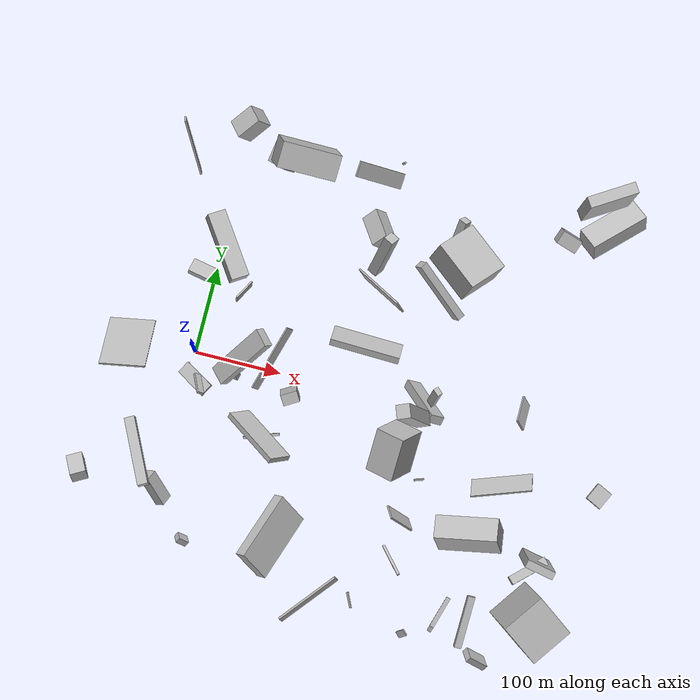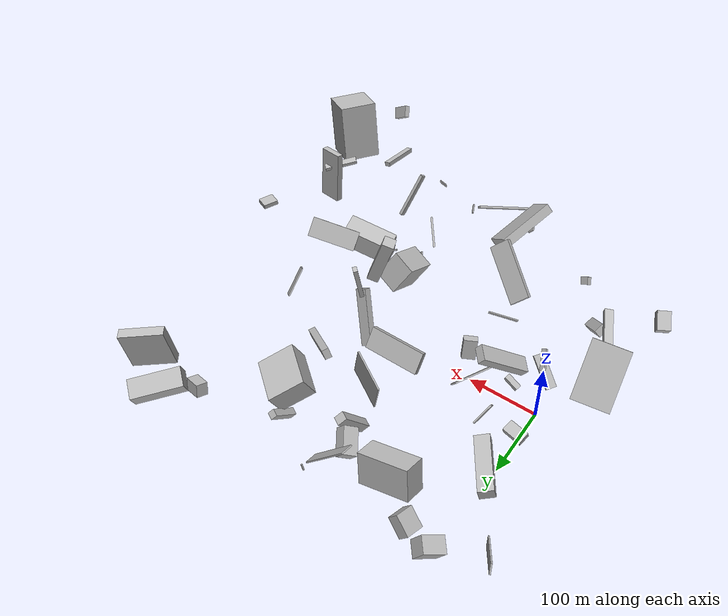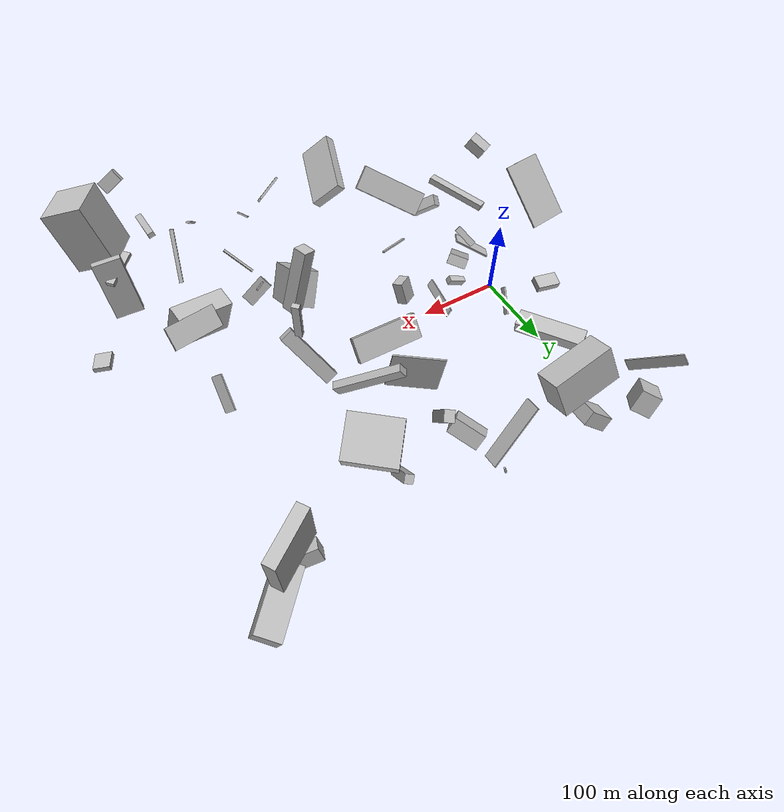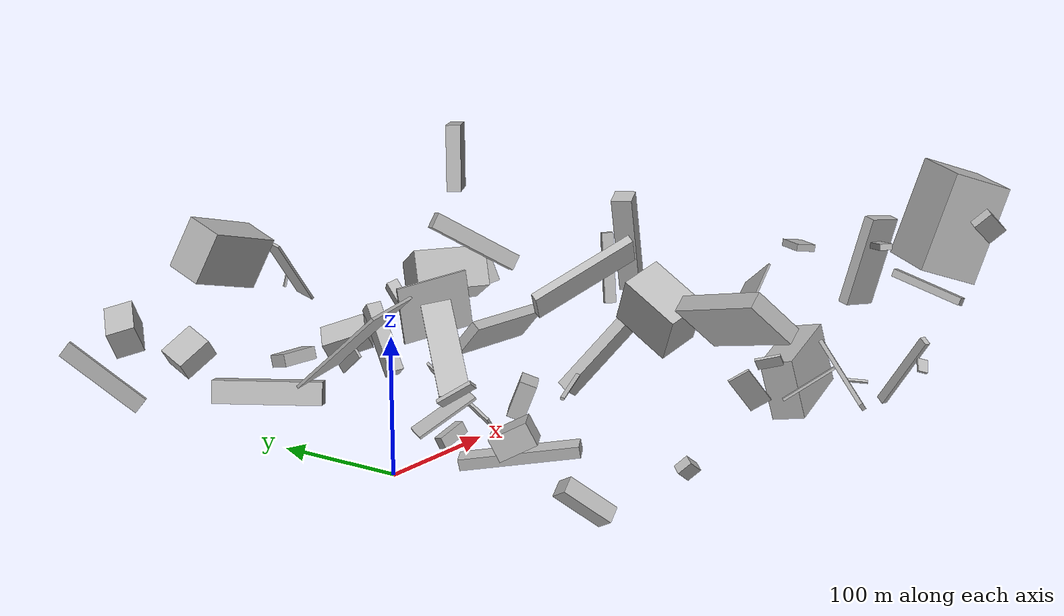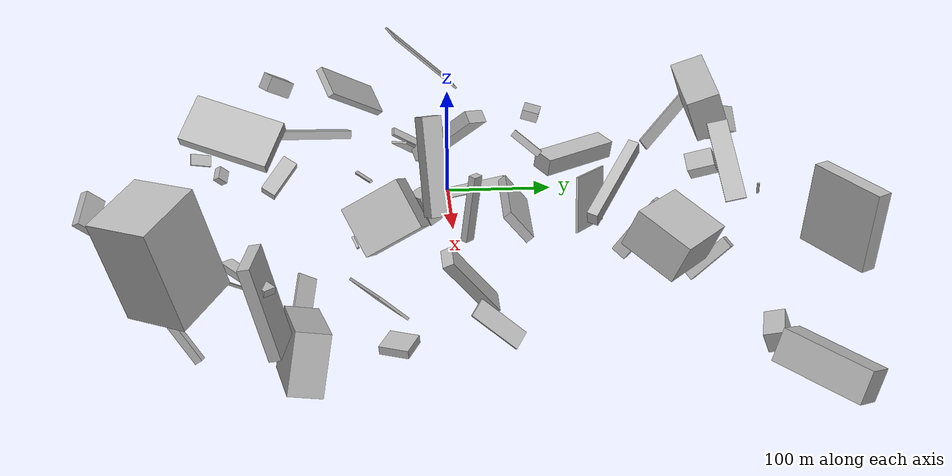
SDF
<sdf version="1.6">
 <world name="default">
  <scene>
   <sky><clouds><speed>12</speed></clouds></sky>
   <ambient>0.4 0.4 0.4 1</ambient>
   <background>0.7 0.7 0.7 1</background>
   <shadows>1</shadows>
  </scene>
  <gravity>0 0 -9.8066</gravity>
  <magnetic_field>6e-06 2.3e-05 -4.2e-05</magnetic_field>
  <physics default="0" name="default_physics" type="ode">
   <ode>
    <solver>
     <type>quick</type>
     <iters>10</iters>
     <sor>1.0</sor>
     <use_dynamic_moi_rescaling>0</use_dynamic_moi_rescaling>
    </solver>
    <constraints>
     <cfm>0</cfm>
     <erp>0.2</erp>
     <contact_max_correcting_vel>100</contact_max_correcting_vel>
     <contact_surface_layer>0.001</contact_surface_layer>
    </constraints>
   </ode>
   <max_step_size>0.004</max_step_size>
   <real_time_factor>1</real_time_factor>
   <real_time_update_rate>250</real_time_update_rate>
  </physics>
  <light name="sun" type="directional">
   <pose>0 0 10 0 0 0</pose>
   <diffuse>0.8 0.8 0.8 1</diffuse>
   <specular>0.2 0.2 0.2 1</specular>
   <attenuation>
    <range>1000</range>
    <constant>0.9</constant>
    <linear>0.01</linear>
    <quadratic>0.001</quadratic>
   </attenuation>
   <direction>-0.5 0.1 -0.9</direction>
  </light>
  <model name="building_1">
   <static>0</static>
   <pose>-25.648808580087987 -128.3590315207773 50.52656099022605 2.3150307828843513 1.3548592781466442 -0.34786988750093717</pose>
   <link name="link">
    <gravity>0</gravity>
    <pose>0 0 6.0 0 0 0</pose>
    <collision name="collision"><geometry><box><size>8 80 12</size></box></geometry></collision>
    <visual name="visual">
     <cast_shadows>0</cast_shadows>
     <geometry><box><size>8 80 12</size></box></geometry>
     <material>
      <script>
       <uri>model://HANNAS_wall/materials/scripts</uri>
       <uri>model://HANNAS_wall/materials/textures</uri>
       <name>vrc/HANNAS_wall</name>
      </script>
     </material>
    </visual>
   </link>
  </model>
  <model name="building_2">
   <static>0</static>
   <pose>140.9863397835036 -218.78834092388547 81.73564247008474 0.6244713602484495 -0.2516196511197131 -1.172433182925218</pose>
   <link name="link">
    <gravity>0</gravity>
    <pose>0 0 5.0 0 0 0</pose>
    <collision name="collision"><geometry><box><size>18 2 10</size></box></geometry></collision>
    <visual name="visual">
     <cast_shadows>0</cast_shadows>
     <geometry><box><size>18 2 10</size></box></geometry>
     <material>
      <script>
       <uri>model://HANNAS_wall/materials/scripts</uri>
       <uri>model://HANNAS_wall/materials/textures</uri>
       <name>vrc/HANNAS_wall</name>
      </script>
     </material>
    </visual>
   </link>
  </model>
  <model name="building_3">
   <static>0</static>
   <pose>194.02165271392116 111.1916273854132 38.60982103677689 0.15383672489767183 0.06830999055464027 -2.0718119767522025</pose>
   <link name="link">
    <gravity>0</gravity>
    <pose>0 0 23.5 0 0 0</pose>
    <collision name="collision"><geometry><box><size>2 59 47</size></box></geometry></collision>
    <visual name="visual">
     <cast_shadows>0</cast_shadows>
     <geometry><box><size>2 59 47</size></box></geometry>
     <material>
      <script>
       <uri>model://HANNAS_wall/materials/scripts</uri>
       <uri>model://HANNAS_wall/materials/textures</uri>
       <name>vrc/HANNAS_wall</name>
      </script>
     </material>
    </visual>
   </link>
  </model>
  <model name="building_4">
   <static>0</static>
   <pose>425.85148200685643 256.0952912750971 35.812108867833516 -2.8123348439069153 -0.15188387645946116 -2.346061519068905</pose>
   <link name="link">
    <gravity>0</gravity>
    <pose>0 0 13.0 0 0 0</pose>
    <collision name="collision"><geometry><box><size>72 28 26</size></box></geometry></collision>
    <visual name="visual">
     <cast_shadows>0</cast_shadows>
     <geometry><box><size>72 28 26</size></box></geometry>
     <material>
      <script>
       <uri>model://HANNAS_wall/materials/scripts</uri>
       <uri>model://HANNAS_wall/materials/textures</uri>
       <name>vrc/HANNAS_wall</name>
      </script>
     </material>
    </visual>
   </link>
  </model>
  <model name="building_5">
   <static>0</static>
   <pose>117.07049153150054 -20.38685762473442 16.953828510390025 0.08401991790631642 0.3621945752645848 -1.0140168460982333</pose>
   <link name="link">
    <gravity>0</gravity>
    <pose>0 0 14.5 0 0 0</pose>
    <collision name="collision"><geometry><box><size>13 19 29</size></box></geometry></collision>
    <visual name="visual">
     <cast_shadows>0</cast_shadows>
     <geometry><box><size>13 19 29</size></box></geometry>
     <material>
      <script>
       <uri>model://HANNAS_wall/materials/scripts</uri>
       <uri>model://HANNAS_wall/materials/textures</uri>
       <name>vrc/HANNAS_wall</name>
      </script>
     </material>
    </visual>
   </link>
  </model>
  <model name="building_6">
   <static>0</static>
   <pose>78.6131410281307 22.11722261666889 100.54930218588761 2.254362812926639 -0.17012061267663706 -0.8410812728498377</pose>
   <link name="link">
    <gravity>0</gravity>
    <pose>0 0 40.0 0 0 0</pose>
    <collision name="collision"><geometry><box><size>22 12 80</size></box></geometry></collision>
    <visual name="visual">
     <cast_shadows>0</cast_shadows>
     <geometry><box><size>22 12 80</size></box></geometry>
     <material>
      <script>
       <uri>model://HANNAS_wall/materials/scripts</uri>
       <uri>model://HANNAS_wall/materials/textures</uri>
       <name>vrc/HANNAS_wall</name>
      </script>
     </material>
    </visual>
   </link>
  </model>
  <model name="building_7">
   <static>0</static>
   <pose>156.57978307171402 235.41367955421785 80.8856118706894 -0.34111342186086896 -0.8291736460478841 -2.954838961459136</pose>
   <link name="link">
    <gravity>0</gravity>
    <pose>0 0 1.0 0 0 0</pose>
    <collision name="collision"><geometry><box><size>74 18 2</size></box></geometry></collision>
    <visual name="visual">
     <cast_shadows>0</cast_shadows>
     <geometry><box><size>74 18 2</size></box></geometry>
     <material>
      <script>
       <uri>model://HANNAS_wall/materials/scripts</uri>
       <uri>model://HANNAS_wall/materials/textures</uri>
       <name>vrc/HANNAS_wall</name>
      </script>
     </material>
    </visual>
   </link>
  </model>
  <model name="building_8">
   <static>0</static>
   <pose>250.9734280720977 121.49472894376518 95.55712576016035 0.20345797326532872 -0.540290804214693 2.5022857659736832</pose>
   <link name="link">
    <gravity>0</gravity>
    <pose>0 0 6.5 0 0 0</pose>
    <collision name="collision"><geometry><box><size>79 9 13</size></box></geometry></collision>
    <visual name="visual">
     <cast_shadows>0</cast_shadows>
     <geometry><box><size>79 9 13</size></box></geometry>
     <material>
      <script>
       <uri>model://HANNAS_wall/materials/scripts</uri>
       <uri>model://HANNAS_wall/materials/textures</uri>
       <name>vrc/HANNAS_wall</name>
      </script>
     </material>
    </visual>
   </link>
  </model>
  <model name="building_9">
   <static>0</static>
   <pose>23.40388477416892 -52.346399273270286 69.30803204535798 -2.283473424436914 0.6222507292315547 -0.01564473794276313</pose>
   <link name="link">
    <gravity>0</gravity>
    <pose>0 0 14.0 0 0 0</pose>
    <collision name="collision"><geometry><box><size>8 3 28</size></box></geometry></collision>
    <visual name="visual">
     <cast_shadows>0</cast_shadows>
     <geometry><box><size>8 3 28</size></box></geometry>
     <material>
      <script>
       <uri>model://HANNAS_wall/materials/scripts</uri>
       <uri>model://HANNAS_wall/materials/textures</uri>
       <name>vrc/HANNAS_wall</name>
      </script>
     </material>
    </visual>
   </link>
  </model>
  <model name="building_10">
   <static>0</static>
   <pose>428.47176554114594 -136.40841570413218 51.07193590630034 0.14551218877190406 -0.21284562025986134 1.3553590596011866</pose>
   <link name="link">
    <gravity>0</gravity>
    <pose>0 0 37.0 0 0 0</pose>
    <collision name="collision"><geometry><box><size>9 33 74</size></box></geometry></collision>
    <visual name="visual">
     <cast_shadows>0</cast_shadows>
     <geometry><box><size>9 33 74</size></box></geometry>
     <material>
      <script>
       <uri>model://HANNAS_wall/materials/scripts</uri>
       <uri>model://HANNAS_wall/materials/textures</uri>
       <name>vrc/HANNAS_wall</name>
      </script>
     </material>
    </visual>
   </link>
  </model>
  <model name="building_11">
   <static>0</static>
   <pose>275.5948764406394 3.2275520689382073 91.39718714816523 2.996642046969616 -1.429939659804069 0.9506548452680297</pose>
   <link name="link">
    <gravity>0</gravity>
    <pose>0 0 3.0 0 0 0</pose>
    <collision name="collision"><geometry><box><size>56 9 6</size></box></geometry></collision>
    <visual name="visual">
     <cast_shadows>0</cast_shadows>
     <geometry><box><size>56 9 6</size></box></geometry>
     <material>
      <script>
       <uri>model://HANNAS_wall/materials/scripts</uri>
       <uri>model://HANNAS_wall/materials/textures</uri>
       <name>vrc/HANNAS_wall</name>
      </script>
     </material>
    </visual>
   </link>
  </model>
  <model name="building_12">
   <static>0</static>
   <pose>148.68250929292486 49.61563717428279 55.67801986218029 -1.612716696681458 0.6999436435722759 -1.6228942964974806</pose>
   <link name="link">
    <gravity>0</gravity>
    <pose>0 0 40.0 0 0 0</pose>
    <collision name="collision"><geometry><box><size>8 30 80</size></box></geometry></collision>
    <visual name="visual">
     <cast_shadows>0</cast_shadows>
     <geometry><box><size>8 30 80</size></box></geometry>
     <material>
      <script>
       <uri>model://HANNAS_wall/materials/scripts</uri>
       <uri>model://HANNAS_wall/materials/textures</uri>
       <name>vrc/HANNAS_wall</name>
      </script>
     </material>
    </visual>
   </link>
  </model>
  <model name="building_13">
   <static>0</static>
   <pose>36.943183568051694 -212.57762425823003 39.51015541186138 2.292800132044213 -0.49357369944751994 1.0405588799168808</pose>
   <link name="link">
    <gravity>0</gravity>
    <pose>0 0 6.5 0 0 0</pose>
    <collision name="collision"><geometry><box><size>7 11 13</size></box></geometry></collision>
    <visual name="visual">
     <cast_shadows>0</cast_shadows>
     <geometry><box><size>7 11 13</size></box></geometry>
     <material>
      <script>
       <uri>model://HANNAS_wall/materials/scripts</uri>
       <uri>model://HANNAS_wall/materials/textures</uri>
       <name>vrc/HANNAS_wall</name>
      </script>
     </material>
    </visual>
   </link>
  </model>
  <model name="building_14">
   <static>0</static>
   <pose>255.37863790243932 201.98893717380085 33.44437241516993 -1.1827721848467612 -0.6998691464163306 -2.2930756385947078</pose>
   <link name="link">
    <gravity>0</gravity>
    <pose>0 0 5.0 0 0 0</pose>
    <collision name="collision"><geometry><box><size>10 43 10</size></box></geometry></collision>
    <visual name="visual">
     <cast_shadows>0</cast_shadows>
     <geometry><box><size>10 43 10</size></box></geometry>
     <material>
      <script>
       <uri>model://HANNAS_wall/materials/scripts</uri>
       <uri>model://HANNAS_wall/materials/textures</uri>
       <name>vrc/HANNAS_wall</name>
      </script>
     </material>
    </visual>
   </link>
  </model>
  <model name="building_15">
   <static>0</static>
   <pose>282.67136677369035 -85.18489066958018 66.0198353953335 -0.5045296299096627 -0.4609399597202614 -2.762877384642854</pose>
   <link name="link">
    <gravity>0</gravity>
    <pose>0 0 1.0 0 0 0</pose>
    <collision name="collision"><geometry><box><size>12 2 2</size></box></geometry></collision>
    <visual name="visual">
     <cast_shadows>0</cast_shadows>
     <geometry><box><size>12 2 2</size></box></geometry>
     <material>
      <script>
       <uri>model://HANNAS_wall/materials/scripts</uri>
       <uri>model://HANNAS_wall/materials/textures</uri>
       <name>vrc/HANNAS_wall</name>
      </script>
     </material>
    </visual>
   </link>
  </model>
  <model name="building_16">
   <static>0</static>
   <pose>413.6516253325218 253.21356897180044 130.7303856209363 1.5858544956179514 -0.12531509761645798 -2.557001323164337</pose>
   <link name="link">
    <gravity>0</gravity>
    <pose>0 0 6.5 0 0 0</pose>
    <collision name="collision"><geometry><box><size>57 59 13</size></box></geometry></collision>
    <visual name="visual">
     <cast_shadows>0</cast_shadows>
     <geometry><box><size>57 59 13</size></box></geometry>
     <material>
      <script>
       <uri>model://HANNAS_wall/materials/scripts</uri>
       <uri>model://HANNAS_wall/materials/textures</uri>
       <name>vrc/HANNAS_wall</name>
      </script>
     </material>
    </visual>
   </link>
  </model>
  <model name="building_17">
   <static>0</static>
   <pose>274.82435877159804 -176.6896365192876 28.400924548533297 -2.5814684250089583 -0.09579750676705587 -2.506897418094291</pose>
   <link name="link">
    <gravity>0</gravity>
    <pose>0 0 1.0 0 0 0</pose>
    <collision name="collision"><geometry><box><size>3 45 2</size></box></geometry></collision>
    <visual name="visual">
     <cast_shadows>0</cast_shadows>
     <geometry><box><size>3 45 2</size></box></geometry>
     <material>
      <script>
       <uri>model://HANNAS_wall/materials/scripts</uri>
       <uri>model://HANNAS_wall/materials/textures</uri>
       <name>vrc/HANNAS_wall</name>
      </script>
     </material>
    </visual>
   </link>
  </model>
  <model name="building_18">
   <static>0</static>
   <pose>-9.587677734565904 80.3017351782864 70.12049680021664 -0.0282279427026292 0.23737682446237457 1.368555581443668</pose>
   <link name="link">
    <gravity>0</gravity>
    <pose>0 0 4.5 0 0 0</pose>
    <collision name="collision"><geometry><box><size>16 27 9</size></box></geometry></collision>
    <visual name="visual">
     <cast_shadows>0</cast_shadows>
     <geometry><box><size>16 27 9</size></box></geometry>
     <material>
      <script>
       <uri>model://HANNAS_wall/materials/scripts</uri>
       <uri>model://HANNAS_wall/materials/textures</uri>
       <name>vrc/HANNAS_wall</name>
      </script>
     </material>
    </visual>
   </link>
  </model>
  <model name="building_19">
   <static>0</static>
   <pose>373.90778114065455 23.059812092499115 43.88951922436026 2.318770825413857 -0.486745404882797 0.44244900085664823</pose>
   <link name="link">
    <gravity>0</gravity>
    <pose>0 0 7.5 0 0 0</pose>
    <collision name="collision"><geometry><box><size>2 43 15</size></box></geometry></collision>
    <visual name="visual">
     <cast_shadows>0</cast_shadows>
     <geometry><box><size>2 43 15</size></box></geometry>
     <material>
      <script>
       <uri>model://HANNAS_wall/materials/scripts</uri>
       <uri>model://HANNAS_wall/materials/textures</uri>
       <name>vrc/HANNAS_wall</name>
      </script>
     </material>
    </visual>
   </link>
  </model>
  <model name="building_20">
   <static>0</static>
   <pose>480.41515677731854 -54.73595404606059 74.26855388182099 -0.01721109840120677 -0.15688763842837022 2.701583678251289</pose>
   <link name="link">
    <gravity>0</gravity>
    <pose>0 0 3.0 0 0 0</pose>
    <collision name="collision"><geometry><box><size>19 21 6</size></box></geometry></collision>
    <visual name="visual">
     <cast_shadows>0</cast_shadows>
     <geometry><box><size>19 21 6</size></box></geometry>
     <material>
      <script>
       <uri>model://HANNAS_wall/materials/scripts</uri>
       <uri>model://HANNAS_wall/materials/textures</uri>
       <name>vrc/HANNAS_wall</name>
      </script>
     </material>
    </visual>
   </link>
  </model>
  <model name="building_21">
   <static>0</static>
   <pose>285.42392278952053 -14.290324487806487 52.95400867718983 2.5831180829037748 -0.5143078072531709 -3.068721767827796</pose>
   <link name="link">
    <gravity>0</gravity>
    <pose>0 0 40.0 0 0 0</pose>
    <collision name="collision"><geometry><box><size>17 10 80</size></box></geometry></collision>
    <visual name="visual">
     <cast_shadows>0</cast_shadows>
     <geometry><box><size>17 10 80</size></box></geometry>
     <material>
      <script>
       <uri>model://HANNAS_wall/materials/scripts</uri>
       <uri>model://HANNAS_wall/materials/textures</uri>
       <name>vrc/HANNAS_wall</name>
      </script>
     </material>
    </visual>
   </link>
  </model>
  <model name="building_22">
   <static>0</static>
   <pose>40.87528999774493 70.28369051669425 57.71884198258939 0.626430103870121 0.21558750245817973 2.897047147658133</pose>
   <link name="link">
    <gravity>0</gravity>
    <pose>0 0 3.5 0 0 0</pose>
    <collision name="collision"><geometry><box><size>2 32 7</size></box></geometry></collision>
    <visual name="visual">
     <cast_shadows>0</cast_shadows>
     <geometry><box><size>2 32 7</size></box></geometry>
     <material>
      <script>
       <uri>model://HANNAS_wall/materials/scripts</uri>
       <uri>model://HANNAS_wall/materials/textures</uri>
       <name>vrc/HANNAS_wall</name>
      </script>
     </material>
    </visual>
   </link>
  </model>
  <model name="building_23">
   <static>0</static>
   <pose>186.13436643646713 154.89636668891177 30.457770068358755 1.7066493231709576 -0.5948134032440344 -2.143613136294983</pose>
   <link name="link">
    <gravity>0</gravity>
    <pose>0 0 6.0 0 0 0</pose>
    <collision name="collision"><geometry><box><size>14 59 12</size></box></geometry></collision>
    <visual name="visual">
     <cast_shadows>0</cast_shadows>
     <geometry><box><size>14 59 12</size></box></geometry>
     <material>
      <script>
       <uri>model://HANNAS_wall/materials/scripts</uri>
       <uri>model://HANNAS_wall/materials/textures</uri>
       <name>vrc/HANNAS_wall</name>
      </script>
     </material>
    </visual>
   </link>
  </model>
  <model name="building_24">
   <static>0</static>
   <pose>279.6496423180307 172.42219544590517 78.23793371802779 3.1258274230792877 0.43686640255580117 0.8885043605128832</pose>
   <link name="link">
    <gravity>0</gravity>
    <pose>0 0 17.0 0 0 0</pose>
    <collision name="collision"><geometry><box><size>51 60 34</size></box></geometry></collision>
    <visual name="visual">
     <cast_shadows>0</cast_shadows>
     <geometry><box><size>51 60 34</size></box></geometry>
     <material>
      <script>
       <uri>model://HANNAS_wall/materials/scripts</uri>
       <uri>model://HANNAS_wall/materials/textures</uri>
       <name>vrc/HANNAS_wall</name>
      </script>
     </material>
    </visual>
   </link>
  </model>
  <model name="building_25">
   <static>0</static>
   <pose>373.81589359977215 -227.02047210404555 88.87705179793713 -0.8097114538054229 1.225270855367172 2.3417030210572887</pose>
   <link name="link">
    <gravity>0</gravity>
    <pose>0 0 4.0 0 0 0</pose>
    <collision name="collision"><geometry><box><size>6 59 8</size></box></geometry></collision>
    <visual name="visual">
     <cast_shadows>0</cast_shadows>
     <geometry><box><size>6 59 8</size></box></geometry>
     <material>
      <script>
       <uri>model://HANNAS_wall/materials/scripts</uri>
       <uri>model://HANNAS_wall/materials/textures</uri>
       <name>vrc/HANNAS_wall</name>
      </script>
     </material>
    </visual>
   </link>
  </model>
  <model name="building_26">
   <static>0</static>
   <pose>6.206194398469673 252.13325167313053 66.47614334562098 2.1299933357147705 -1.0295884897406093 -2.9339318622526216</pose>
   <link name="link">
    <gravity>0</gravity>
    <pose>0 0 11.0 0 0 0</pose>
    <collision name="collision"><geometry><box><size>25 31 22</size></box></geometry></collision>
    <visual name="visual">
     <cast_shadows>0</cast_shadows>
     <geometry><box><size>25 31 22</size></box></geometry>
     <material>
      <script>
       <uri>model://HANNAS_wall/materials/scripts</uri>
       <uri>model://HANNAS_wall/materials/textures</uri>
       <name>vrc/HANNAS_wall</name>
      </script>
     </material>
    </visual>
   </link>
  </model>
  <model name="building_27">
   <static>0</static>
   <pose>196.49675625578993 -243.34768254180796 65.43363695734033 0.928678975553068 -0.3123686900972122 0.8678702388035875</pose>
   <link name="link">
    <gravity>0</gravity>
    <pose>0 0 1.5 0 0 0</pose>
    <collision name="collision"><geometry><box><size>80 6 3</size></box></geometry></collision>
    <visual name="visual">
     <cast_shadows>0</cast_shadows>
     <geometry><box><size>80 6 3</size></box></geometry>
     <material>
      <script>
       <uri>model://HANNAS_wall/materials/scripts</uri>
       <uri>model://HANNAS_wall/materials/textures</uri>
       <name>vrc/HANNAS_wall</name>
      </script>
     </material>
    </visual>
   </link>
  </model>
  <model name="building_28">
   <static>0</static>
   <pose>420.4135106813281 -153.00224461788537 102.38317993738261 1.4800634891007938 -1.4022393265673154 0.8583971545017733</pose>
   <link name="link">
    <gravity>0</gravity>
    <pose>0 0 5.0 0 0 0</pose>
    <collision name="collision"><geometry><box><size>5 46 10</size></box></geometry></collision>
    <visual name="visual">
     <cast_shadows>0</cast_shadows>
     <geometry><box><size>5 46 10</size></box></geometry>
     <material>
      <script>
       <uri>model://HANNAS_wall/materials/scripts</uri>
       <uri>model://HANNAS_wall/materials/textures</uri>
       <name>vrc/HANNAS_wall</name>
      </script>
     </material>
    </visual>
   </link>
  </model>
  <model name="building_29">
   <static>0</static>
   <pose>347.91769944966376 -121.70642734504531 32.829360349939535 2.969097881384842 0.18866916156321464 1.7097952542230848</pose>
   <link name="link">
    <gravity>0</gravity>
    <pose>0 0 24.5 0 0 0</pose>
    <collision name="collision"><geometry><box><size>27 72 49</size></box></geometry></collision>
    <visual name="visual">
     <cast_shadows>0</cast_shadows>
     <geometry><box><size>27 72 49</size></box></geometry>
     <material>
      <script>
       <uri>model://HANNAS_wall/materials/scripts</uri>
       <uri>model://HANNAS_wall/materials/textures</uri>
       <name>vrc/HANNAS_wall</name>
      </script>
     </material>
    </visual>
   </link>
  </model>
  <model name="building_30">
   <static>0</static>
   <pose>-84.60093316564485 -170.33572799037853 76.34693727835452 -0.4708048100065299 -0.012695495440034607 0.5107915163314585</pose>
   <link name="link">
    <gravity>0</gravity>
    <pose>0 0 8.0 0 0 0</pose>
    <collision name="collision"><geometry><box><size>18 26 16</size></box></geometry></collision>
    <visual name="visual">
     <cast_shadows>0</cast_shadows>
     <geometry><box><size>18 26 16</size></box></geometry>
     <material>
      <script>
       <uri>model://HANNAS_wall/materials/scripts</uri>
       <uri>model://HANNAS_wall/materials/textures</uri>
       <name>vrc/HANNAS_wall</name>
      </script>
     </material>
    </visual>
   </link>
  </model>
  <model name="building_31">
   <static>0</static>
   <pose>248.99733851097147 -26.909275565750463 157.73363582293032 3.112984377744407 -0.2932658414631561 0.3569931859350571</pose>
   <link name="link">
    <gravity>0</gravity>
    <pose>0 0 39.5 0 0 0</pose>
    <collision name="collision"><geometry><box><size>16 16 79</size></box></geometry></collision>
    <visual name="visual">
     <cast_shadows>0</cast_shadows>
     <geometry><box><size>16 16 79</size></box></geometry>
     <material>
      <script>
       <uri>model://HANNAS_wall/materials/scripts</uri>
       <uri>model://HANNAS_wall/materials/textures</uri>
       <name>vrc/HANNAS_wall</name>
      </script>
     </material>
    </visual>
   </link>
  </model>
  <model name="building_32">
   <static>0</static>
   <pose>372.83703735462217 -58.06448228807549 51.566012498274304 0.28589969319527914 0.791496915505491 -1.0401591467953335</pose>
   <link name="link">
    <gravity>0</gravity>
    <pose>0 0 14.0 0 0 0</pose>
    <collision name="collision"><geometry><box><size>2 69 28</size></box></geometry></collision>
    <visual name="visual">
     <cast_shadows>0</cast_shadows>
     <geometry><box><size>2 69 28</size></box></geometry>
     <material>
      <script>
       <uri>model://HANNAS_wall/materials/scripts</uri>
       <uri>model://HANNAS_wall/materials/textures</uri>
       <name>vrc/HANNAS_wall</name>
      </script>
     </material>
    </visual>
   </link>
  </model>
  <model name="building_33">
   <static>0</static>
   <pose>378.94836601299045 228.91756925209958 20.27135921192016 0.3239422551402743 -0.2888822408339668 1.2234937485489294</pose>
   <link name="link">
    <gravity>0</gravity>
    <pose>0 0 9.0 0 0 0</pose>
    <collision name="collision"><geometry><box><size>16 25 18</size></box></geometry></collision>
    <visual name="visual">
     <cast_shadows>0</cast_shadows>
     <geometry><box><size>16 25 18</size></box></geometry>
     <material>
      <script>
       <uri>model://HANNAS_wall/materials/scripts</uri>
       <uri>model://HANNAS_wall/materials/textures</uri>
       <name>vrc/HANNAS_wall</name>
      </script>
     </material>
    </visual>
   </link>
  </model>
  <model name="building_34">
   <static>0</static>
   <pose>89.57575124855973 9.494155713619733 34.387806593859345 2.650273995476173 -0.873238496451817 -3.0585728685452733</pose>
   <link name="link">
    <gravity>0</gravity>
    <pose>0 0 1.0 0 0 0</pose>
    <collision name="collision"><geometry><box><size>10 80 2</size></box></geometry></collision>
    <visual name="visual">
     <cast_shadows>0</cast_shadows>
     <geometry><box><size>10 80 2</size></box></geometry>
     <material>
      <script>
       <uri>model://HANNAS_wall/materials/scripts</uri>
       <uri>model://HANNAS_wall/materials/textures</uri>
       <name>vrc/HANNAS_wall</name>
      </script>
     </material>
    </visual>
   </link>
  </model>
  <model name="building_35">
   <static>0</static>
   <pose>100.26923094777315 -80.45154187386704 53.8608195963274 -3.001199871296251 0.350144078671074 -1.1963990167081973</pose>
   <link name="link">
    <gravity>0</gravity>
    <pose>0 0 1.0 0 0 0</pose>
    <collision name="collision"><geometry><box><size>3 41 2</size></box></geometry></collision>
    <visual name="visual">
     <cast_shadows>0</cast_shadows>
     <geometry><box><size>3 41 2</size></box></geometry>
     <material>
      <script>
       <uri>model://HANNAS_wall/materials/scripts</uri>
       <uri>model://HANNAS_wall/materials/textures</uri>
       <name>vrc/HANNAS_wall</name>
      </script>
     </material>
    </visual>
   </link>
  </model>
  <model name="building_36">
   <static>0</static>
   <pose>154.61870071954843 -198.57574120050037 95.64477283549517 -0.7939158760772277 0.23965009587268496 1.261899175803757</pose>
   <link name="link">
    <gravity>0</gravity>
    <pose>0 0 21.5 0 0 0</pose>
    <collision name="collision"><geometry><box><size>80 13 43</size></box></geometry></collision>
    <visual name="visual">
     <cast_shadows>0</cast_shadows>
     <geometry><box><size>80 13 43</size></box></geometry>
     <material>
      <script>
       <uri>model://HANNAS_wall/materials/scripts</uri>
       <uri>model://HANNAS_wall/materials/textures</uri>
       <name>vrc/HANNAS_wall</name>
      </script>
     </material>
    </visual>
   </link>
  </model>
  <model name="building_37">
   <static>0</static>
   <pose>259.9944771847451 -125.18082959906252 28.86208067394891 -2.62515853860896 -0.5520854220695104 -1.047076429219619</pose>
   <link name="link">
    <gravity>0</gravity>
    <pose>0 0 19.5 0 0 0</pose>
    <collision name="collision"><geometry><box><size>18 2 39</size></box></geometry></collision>
    <visual name="visual">
     <cast_shadows>0</cast_shadows>
     <geometry><box><size>18 2 39</size></box></geometry>
     <material>
      <script>
       <uri>model://HANNAS_wall/materials/scripts</uri>
       <uri>model://HANNAS_wall/materials/textures</uri>
       <name>vrc/HANNAS_wall</name>
      </script>
     </material>
    </visual>
   </link>
  </model>
  <model name="building_38">
   <static>0</static>
   <pose>-58.27968014476198 223.20008094066367 47.165648619099194 1.670500631111104 0.6633611454811194 -1.030012698958972</pose>
   <link name="link">
    <gravity>0</gravity>
    <pose>0 0 1.0 0 0 0</pose>
    <collision name="collision"><geometry><box><size>69 14 2</size></box></geometry></collision>
    <visual name="visual">
     <cast_shadows>0</cast_shadows>
     <geometry><box><size>69 14 2</size></box></geometry>
     <material>
      <script>
       <uri>model://HANNAS_wall/materials/scripts</uri>
       <uri>model://HANNAS_wall/materials/textures</uri>
       <name>vrc/HANNAS_wall</name>
      </script>
     </material>
    </visual>
   </link>
  </model>
  <model name="building_39">
   <static>0</static>
   <pose>422.79359825012796 -232.89091020175437 125.49360190404875 1.5068045912508778 -0.32294216460908703 2.5438094222571963</pose>
   <link name="link">
    <gravity>0</gravity>
    <pose>0 0 25.5 0 0 0</pose>
    <collision name="collision"><geometry><box><size>51 80 51</size></box></geometry></collision>
    <visual name="visual">
     <cast_shadows>0</cast_shadows>
     <geometry><box><size>51 80 51</size></box></geometry>
     <material>
      <script>
       <uri>model://HANNAS_wall/materials/scripts</uri>
       <uri>model://HANNAS_wall/materials/textures</uri>
       <name>vrc/HANNAS_wall</name>
      </script>
     </material>
    </visual>
   </link>
  </model>
  <model name="building_40">
   <static>0</static>
   <pose>68.98213187453865 234.2992250004095 93.84018126290214 -0.3533619699018489 -0.2625942362081851 -3.0939388948974624</pose>
   <link name="link">
    <gravity>0</gravity>
    <pose>0 0 21.0 0 0 0</pose>
    <collision name="collision"><geometry><box><size>68 30 42</size></box></geometry></collision>
    <visual name="visual">
     <cast_shadows>0</cast_shadows>
     <geometry><box><size>68 30 42</size></box></geometry>
     <material>
      <script>
       <uri>model://HANNAS_wall/materials/scripts</uri>
       <uri>model://HANNAS_wall/materials/textures</uri>
       <name>vrc/HANNAS_wall</name>
      </script>
     </material>
    </visual>
   </link>
  </model>
  <model name="building_41">
   <static>0</static>
   <pose>177.99322705853587 259.06569251532653 58.987764977719905 0.2821534971218932 0.07769931966726192 1.1214116323587107</pose>
   <link name="link">
    <gravity>0</gravity>
    <pose>0 0 5.0 0 0 0</pose>
    <collision name="collision"><geometry><box><size>2 2 10</size></box></geometry></collision>
    <visual name="visual">
     <cast_shadows>0</cast_shadows>
     <geometry><box><size>2 2 10</size></box></geometry>
     <material>
      <script>
       <uri>model://HANNAS_wall/materials/scripts</uri>
       <uri>model://HANNAS_wall/materials/textures</uri>
       <name>vrc/HANNAS_wall</name>
      </script>
     </material>
    </visual>
   </link>
  </model>
  <model name="building_42">
   <static>0</static>
   <pose>44.21749930307985 -14.192813546600853 23.83350701030143 -2.77051283106149 -0.21043763654927955 -1.833184566316622</pose>
   <link name="link">
    <gravity>0</gravity>
    <pose>0 0 4.5 0 0 0</pose>
    <collision name="collision"><geometry><box><size>8 22 9</size></box></geometry></collision>
    <visual name="visual">
     <cast_shadows>0</cast_shadows>
     <geometry><box><size>8 22 9</size></box></geometry>
     <material>
      <script>
       <uri>model://HANNAS_wall/materials/scripts</uri>
       <uri>model://HANNAS_wall/materials/textures</uri>
       <name>vrc/HANNAS_wall</name>
      </script>
     </material>
    </visual>
   </link>
  </model>
  <model name="building_43">
   <static>0</static>
   <pose>310.03229304936394 -252.68951015063502 50.85054129951812 -2.3517826040451375 -0.3088482476161802 2.373763614667886</pose>
   <link name="link">
    <gravity>0</gravity>
    <pose>0 0 5.5 0 0 0</pose>
    <collision name="collision"><geometry><box><size>8 2 11</size></box></geometry></collision>
    <visual name="visual">
     <cast_shadows>0</cast_shadows>
     <geometry><box><size>8 2 11</size></box></geometry>
     <material>
      <script>
       <uri>model://HANNAS_wall/materials/scripts</uri>
       <uri>model://HANNAS_wall/materials/textures</uri>
       <name>vrc/HANNAS_wall</name>
      </script>
     </material>
    </visual>
   </link>
  </model>
  <model name="building_44">
   <static>0</static>
   <pose>-64.95751829474389 -21.822669254651174 116.22083777117739 2.40754608260441 -0.04695199485326547 0.17019650944005035</pose>
   <link name="link">
    <gravity>0</gravity>
    <pose>0 0 1.0 0 0 0</pose>
    <collision name="collision"><geometry><box><size>51 80 2</size></box></geometry></collision>
    <visual name="visual">
     <cast_shadows>0</cast_shadows>
     <geometry><box><size>51 80 2</size></box></geometry>
     <material>
      <script>
       <uri>model://HANNAS_wall/materials/scripts</uri>
       <uri>model://HANNAS_wall/materials/textures</uri>
       <name>vrc/HANNAS_wall</name>
      </script>
     </material>
    </visual>
   </link>
  </model>
  <model name="building_45">
   <static>0</static>
   <pose>387.7555438049444 -268.2503659798035 137.3581719084373 -0.9773086189051802 0.6570943316701382 -0.2001407247639593</pose>
   <link name="link">
    <gravity>0</gravity>
    <pose>0 0 3.5 0 0 0</pose>
    <collision name="collision"><geometry><box><size>26 16 7</size></box></geometry></collision>
    <visual name="visual">
     <cast_shadows>0</cast_shadows>
     <geometry><box><size>26 16 7</size></box></geometry>
     <material>
      <script>
       <uri>model://HANNAS_wall/materials/scripts</uri>
       <uri>model://HANNAS_wall/materials/textures</uri>
       <name>vrc/HANNAS_wall</name>
      </script>
     </material>
    </visual>
   </link>
  </model>
  <model name="building_46">
   <static>0</static>
   <pose>342.70349967757744 -220.13736847888586 31.262183169943864 2.1974665067165606 0.01299454278741301 -0.30464492004770216</pose>
   <link name="link">
    <gravity>0</gravity>
    <pose>0 0 3.5 0 0 0</pose>
    <collision name="collision"><geometry><box><size>5 70 7</size></box></geometry></collision>
    <visual name="visual">
     <cast_shadows>0</cast_shadows>
     <geometry><box><size>5 70 7</size></box></geometry>
     <material>
      <script>
       <uri>model://HANNAS_wall/materials/scripts</uri>
       <uri>model://HANNAS_wall/materials/textures</uri>
       <name>vrc/HANNAS_wall</name>
      </script>
     </material>
    </visual>
   </link>
  </model>
  <model name="building_47">
   <static>0</static>
   <pose>28.63080007400684 -46.697373631543314 60.079651814800236 2.1009977298170393 0.12310357119125405 -2.076425667444318</pose>
   <link name="link">
    <gravity>0</gravity>
    <pose>0 0 23.5 0 0 0</pose>
    <collision name="collision"><geometry><box><size>16 2 47</size></box></geometry></collision>
    <visual name="visual">
     <cast_shadows>0</cast_shadows>
     <geometry><box><size>16 2 47</size></box></geometry>
     <material>
      <script>
       <uri>model://HANNAS_wall/materials/scripts</uri>
       <uri>model://HANNAS_wall/materials/textures</uri>
       <name>vrc/HANNAS_wall</name>
      </script>
     </material>
    </visual>
   </link>
  </model>
  <model name="building_48">
   <static>0</static>
   <pose>5.380605922373338 120.71286019984721 28.792615686239987 0.021042277405140582 0.222489812074247 0.607370071767428</pose>
   <link name="link">
    <gravity>0</gravity>
    <pose>0 0 8.5 0 0 0</pose>
    <collision name="collision"><geometry><box><size>21 80 17</size></box></geometry></collision>
    <visual name="visual">
     <cast_shadows>0</cast_shadows>
     <geometry><box><size>21 80 17</size></box></geometry>
     <material>
      <script>
       <uri>model://HANNAS_wall/materials/scripts</uri>
       <uri>model://HANNAS_wall/materials/textures</uri>
       <name>vrc/HANNAS_wall</name>
      </script>
     </material>
    </visual>
   </link>
  </model>
  <model name="building_49">
   <static>0</static>
   <pose>73.87130077172597 -68.9364653033592 116.00341275942375 -0.9696269640130476 0.6500785249064289 -1.7943656225665183</pose>
   <link name="link">
    <gravity>0</gravity>
    <pose>0 0 40.0 0 0 0</pose>
    <collision name="collision"><geometry><box><size>6 28 80</size></box></geometry></collision>
    <visual name="visual">
     <cast_shadows>0</cast_shadows>
     <geometry><box><size>6 28 80</size></box></geometry>
     <material>
      <script>
       <uri>model://HANNAS_wall/materials/scripts</uri>
       <uri>model://HANNAS_wall/materials/textures</uri>
       <name>vrc/HANNAS_wall</name>
      </script>
     </material>
    </visual>
   </link>
  </model>
  <model name="building_50">
   <static>0</static>
   <pose>1.4868715753814605 -162.5659771437086 19.451769641239288 -2.5177937926521134 -0.6507166684517168 2.3806581629894947</pose>
   <link name="link">
    <gravity>0</gravity>
    <pose>0 0 6.0 0 0 0</pose>
    <collision name="collision"><geometry><box><size>39 15 12</size></box></geometry></collision>
    <visual name="visual">
     <cast_shadows>0</cast_shadows>
     <geometry><box><size>39 15 12</size></box></geometry>
     <material>
      <script>
       <uri>model://HANNAS_wall/materials/scripts</uri>
       <uri>model://HANNAS_wall/materials/textures</uri>
       <name>vrc/HANNAS_wall</name>
      </script>
     </material>
    </visual>
   </link>
  </model>
  <model name="building_51">
   <static>0</static>
   <pose>42.682394149678046 226.6054989740977 34.33043490185173 -1.2137754526792026 -0.5975802319619392 -0.39635626344221225</pose>
   <link name="link">
    <gravity>0</gravity>
    <pose>0 0 13.0 0 0 0</pose>
    <collision name="collision"><geometry><box><size>29 17 26</size></box></geometry></collision>
    <visual name="visual">
     <cast_shadows>0</cast_shadows>
     <geometry><box><size>29 17 26</size></box></geometry>
     <material>
      <script>
       <uri>model://HANNAS_wall/materials/scripts</uri>
       <uri>model://HANNAS_wall/materials/textures</uri>
       <name>vrc/HANNAS_wall</name>
      </script>
     </material>
    </visual>
   </link>
  </model>
  <model name="building_52">
   <static>0</static>
   <pose>256.9243303321196 -51.60750683258521 55.92510792300647 0.3909531508998378 0.5278444130068981 -1.6159140256627</pose>
   <link name="link">
    <gravity>0</gravity>
    <pose>0 0 21.5 0 0 0</pose>
    <collision name="collision"><geometry><box><size>51 34 43</size></box></geometry></collision>
    <visual name="visual">
     <cast_shadows>0</cast_shadows>
     <geometry><box><size>51 34 43</size></box></geometry>
     <material>
      <script>
       <uri>model://HANNAS_wall/materials/scripts</uri>
       <uri>model://HANNAS_wall/materials/textures</uri>
       <name>vrc/HANNAS_wall</name>
      </script>
     </material>
    </visual>
   </link>
  </model>
  <model name="building_53">
   <static>0</static>
   <pose>159.35116526247546 199.96975873219176 23.816432189820002 1.1931177874375594 -0.5328217805707437 0.7737594366694261</pose>
   <link name="link">
    <gravity>0</gravity>
    <pose>0 0 18.5 0 0 0</pose>
    <collision name="collision"><geometry><box><size>21 19 37</size></box></geometry></collision>
    <visual name="visual">
     <cast_shadows>0</cast_shadows>
     <geometry><box><size>21 19 37</size></box></geometry>
     <material>
      <script>
       <uri>model://HANNAS_wall/materials/scripts</uri>
       <uri>model://HANNAS_wall/materials/textures</uri>
       <name>vrc/HANNAS_wall</name>
      </script>
     </material>
    </visual>
   </link>
  </model>
  <model name="building_54">
   <static>0</static>
   <pose>241.33574034354254 -232.86015848909787 47.821038535411176 0.05880923697316499 -0.6497367572037084 0.40868299126480595</pose>
   <link name="link">
    <gravity>0</gravity>
    <pose>0 0 1.0 0 0 0</pose>
    <collision name="collision"><geometry><box><size>2 18 2</size></box></geometry></collision>
    <visual name="visual">
     <cast_shadows>0</cast_shadows>
     <geometry><box><size>2 18 2</size></box></geometry>
     <material>
      <script>
       <uri>model://HANNAS_wall/materials/scripts</uri>
       <uri>model://HANNAS_wall/materials/textures</uri>
       <name>vrc/HANNAS_wall</name>
      </script>
     </material>
    </visual>
   </link>
  </model>
 </world>
</sdf>
